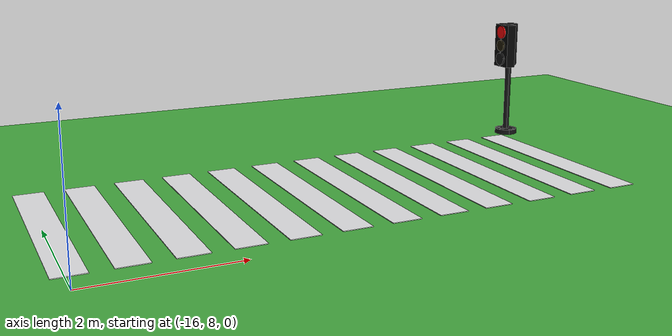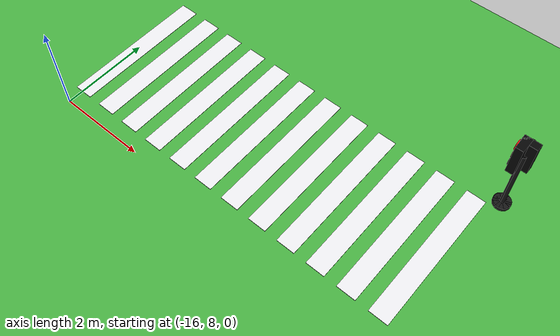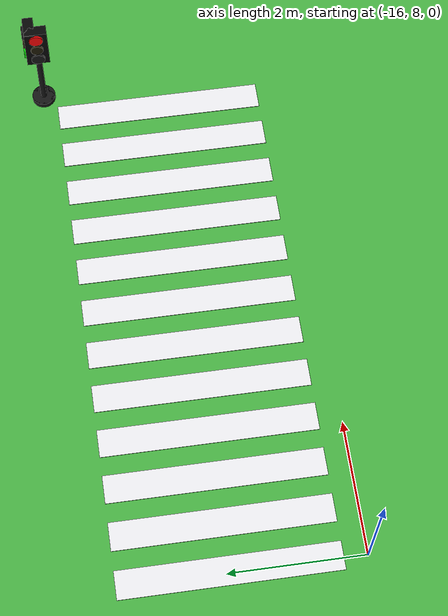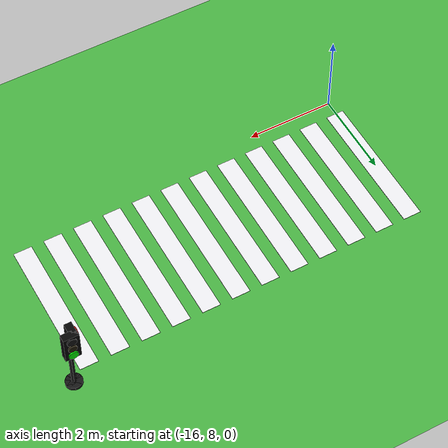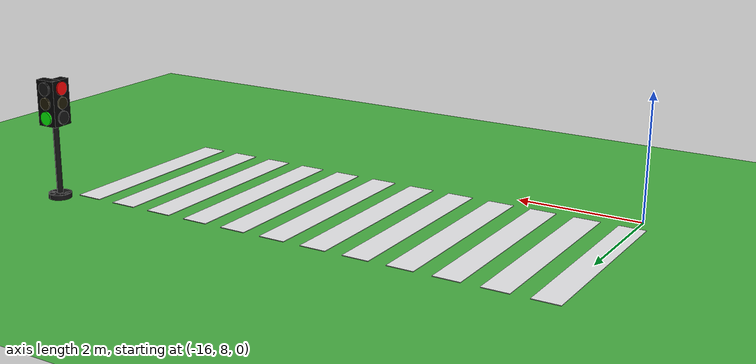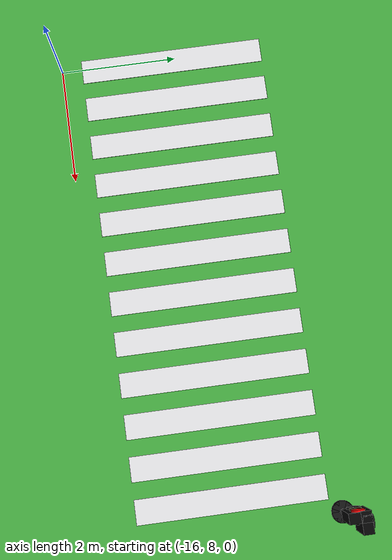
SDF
<sdf version="1.10">
 <world name="city_second">
  <model name="ground_plane">
   <static>true</static>
   <link name="link">
    <collision name="collision">
     <geometry><plane><normal>0 0 1</normal><size>300 300</size></plane></geometry>
    </collision>
    <visual name="visual">
     <geometry><plane><normal>0 0 1</normal><size>300 300</size></plane></geometry>
     <material>
      <ambient>0.280000001 0.689999998 0.25999999 1</ambient>
      <diffuse>0.280000001 0.689999998 0.25999999 1</diffuse>
      <specular>0.0299999993 0.0299999993 0.0299999993 1</specular>
     </material>
    </visual>
    <inertial>
     <mass>1</mass>
     <inertia><ixx>1</ixx><ixy>0</ixy><ixz>0</ixz><iyy>1</iyy><iyz>0</iyz><izz>1</izz></inertia>
    </inertial>
   </link>
  </model>
  <model name="crosswalk_h_1_1_south_7_5">
   <static>true</static>
   <pose>-12.1074 9.9455399999999994 0.017000000000000001 0 0 0</pose>
   <link name="stripe_1">
    <collision name="collision">
     <geometry><box><size>0.41999999999999998 3.2000000000000002 0.01</size></box></geometry>
    </collision>
    <visual name="visual">
     <geometry><box><size>0.41999999999999998 3.2000000000000002 0.01</size></box></geometry>
     <material>
      <ambient>0.920000017 0.920000017 0.930000007 1</ambient>
      <diffuse>0.920000017 0.920000017 0.930000007 1</diffuse>
      <specular>0.0299999993 0.0299999993 0.0299999993 1</specular>
     </material>
    </visual>
    <pose>-3.8500000000000001 0 0 0 0 0</pose>
    <inertial>
     <mass>1</mass>
     <inertia><ixx>1</ixx><ixy>0</ixy><ixz>0</ixz><iyy>1</iyy><iyz>0</iyz><izz>1</izz></inertia>
    </inertial>
   </link>
   <link name="stripe_2">
    <collision name="collision">
     <geometry><box><size>0.41999999999999998 3.2000000000000002 0.01</size></box></geometry>
    </collision>
    <visual name="visual">
     <geometry><box><size>0.41999999999999998 3.2000000000000002 0.01</size></box></geometry>
     <material>
      <ambient>0.920000017 0.920000017 0.930000007 1</ambient>
      <diffuse>0.920000017 0.920000017 0.930000007 1</diffuse>
      <specular>0.0299999993 0.0299999993 0.0299999993 1</specular>
     </material>
    </visual>
    <pose>-3.1500000000000004 0 0 0 0 0</pose>
    <inertial>
     <mass>1</mass>
     <inertia><ixx>1</ixx><ixy>0</ixy><ixz>0</ixz><iyy>1</iyy><iyz>0</iyz><izz>1</izz></inertia>
    </inertial>
   </link>
   <link name="stripe_3">
    <collision name="collision">
     <geometry><box><size>0.41999999999999998 3.2000000000000002 0.01</size></box></geometry>
    </collision>
    <visual name="visual">
     <geometry><box><size>0.41999999999999998 3.2000000000000002 0.01</size></box></geometry>
     <material>
      <ambient>0.920000017 0.920000017 0.930000007 1</ambient>
      <diffuse>0.920000017 0.920000017 0.930000007 1</diffuse>
      <specular>0.0299999993 0.0299999993 0.0299999993 1</specular>
     </material>
    </visual>
    <pose>-2.4500000000000011 0 0 0 0 0</pose>
    <inertial>
     <mass>1</mass>
     <inertia><ixx>1</ixx><ixy>0</ixy><ixz>0</ixz><iyy>1</iyy><iyz>0</iyz><izz>1</izz></inertia>
    </inertial>
   </link>
   <link name="stripe_4">
    <collision name="collision">
     <geometry><box><size>0.41999999999999998 3.2000000000000002 0.01</size></box></geometry>
    </collision>
    <visual name="visual">
     <geometry><box><size>0.41999999999999998 3.2000000000000002 0.01</size></box></geometry>
     <material>
      <ambient>0.920000017 0.920000017 0.930000007 1</ambient>
      <diffuse>0.920000017 0.920000017 0.930000007 1</diffuse>
      <specular>0.0299999993 0.0299999993 0.0299999993 1</specular>
     </material>
    </visual>
    <pose>-1.75 0 0 0 0 0</pose>
    <inertial>
     <mass>1</mass>
     <inertia><ixx>1</ixx><ixy>0</ixy><ixz>0</ixz><iyy>1</iyy><iyz>0</iyz><izz>1</izz></inertia>
    </inertial>
   </link>
   <link name="stripe_5">
    <collision name="collision">
     <geometry><box><size>0.41999999999999998 3.2000000000000002 0.01</size></box></geometry>
    </collision>
    <visual name="visual">
     <geometry><box><size>0.41999999999999998 3.2000000000000002 0.01</size></box></geometry>
     <material>
      <ambient>0.920000017 0.920000017 0.930000007 1</ambient>
      <diffuse>0.920000017 0.920000017 0.930000007 1</diffuse>
      <specular>0.0299999993 0.0299999993 0.0299999993 1</specular>
     </material>
    </visual>
    <pose>-1.0500000000000007 0 0 0 0 0</pose>
    <inertial>
     <mass>1</mass>
     <inertia><ixx>1</ixx><ixy>0</ixy><ixz>0</ixz><iyy>1</iyy><iyz>0</iyz><izz>1</izz></inertia>
    </inertial>
   </link>
   <link name="stripe_6">
    <collision name="collision">
     <geometry><box><size>0.41999999999999998 3.2000000000000002 0.01</size></box></geometry>
    </collision>
    <visual name="visual">
     <geometry><box><size>0.41999999999999998 3.2000000000000002 0.01</size></box></geometry>
     <material>
      <ambient>0.920000017 0.920000017 0.930000007 1</ambient>
      <diffuse>0.920000017 0.920000017 0.930000007 1</diffuse>
      <specular>0.0299999993 0.0299999993 0.0299999993 1</specular>
     </material>
    </visual>
    <pose>-0.34999999999999964 0 0 0 0 0</pose>
    <inertial>
     <mass>1</mass>
     <inertia><ixx>1</ixx><ixy>0</ixy><ixz>0</ixz><iyy>1</iyy><iyz>0</iyz><izz>1</izz></inertia>
    </inertial>
   </link>
   <link name="stripe_7">
    <collision name="collision">
     <geometry><box><size>0.41999999999999998 3.2000000000000002 0.01</size></box></geometry>
    </collision>
    <visual name="visual">
     <geometry><box><size>0.41999999999999998 3.2000000000000002 0.01</size></box></geometry>
     <material>
      <ambient>0.920000017 0.920000017 0.930000007 1</ambient>
      <diffuse>0.920000017 0.920000017 0.930000007 1</diffuse>
      <specular>0.0299999993 0.0299999993 0.0299999993 1</specular>
     </material>
    </visual>
    <pose>0.34999999999999964 0 0 0 0 0</pose>
    <inertial>
     <mass>1</mass>
     <inertia><ixx>1</ixx><ixy>0</ixy><ixz>0</ixz><iyy>1</iyy><iyz>0</iyz><izz>1</izz></inertia>
    </inertial>
   </link>
   <link name="stripe_8">
    <collision name="collision">
     <geometry><box><size>0.41999999999999998 3.2000000000000002 0.01</size></box></geometry>
    </collision>
    <visual name="visual">
     <geometry><box><size>0.41999999999999998 3.2000000000000002 0.01</size></box></geometry>
     <material>
      <ambient>0.920000017 0.920000017 0.930000007 1</ambient>
      <diffuse>0.920000017 0.920000017 0.930000007 1</diffuse>
      <specular>0.0299999993 0.0299999993 0.0299999993 1</specular>
     </material>
    </visual>
    <pose>1.0500000000000007 0 0 0 0 0</pose>
    <inertial>
     <mass>1</mass>
     <inertia><ixx>1</ixx><ixy>0</ixy><ixz>0</ixz><iyy>1</iyy><iyz>0</iyz><izz>1</izz></inertia>
    </inertial>
   </link>
   <link name="stripe_9">
    <collision name="collision">
     <geometry><box><size>0.41999999999999998 3.2000000000000002 0.01</size></box></geometry>
    </collision>
    <visual name="visual">
     <geometry><box><size>0.41999999999999998 3.2000000000000002 0.01</size></box></geometry>
     <material>
      <ambient>0.920000017 0.920000017 0.930000007 1</ambient>
      <diffuse>0.920000017 0.920000017 0.930000007 1</diffuse>
      <specular>0.0299999993 0.0299999993 0.0299999993 1</specular>
     </material>
    </visual>
    <pose>1.75 0 0 0 0 0</pose>
    <inertial>
     <mass>1</mass>
     <inertia><ixx>1</ixx><ixy>0</ixy><ixz>0</ixz><iyy>1</iyy><iyz>0</iyz><izz>1</izz></inertia>
    </inertial>
   </link>
   <link name="stripe_10">
    <collision name="collision">
     <geometry><box><size>0.41999999999999998 3.2000000000000002 0.01</size></box></geometry>
    </collision>
    <visual name="visual">
     <geometry><box><size>0.41999999999999998 3.2000000000000002 0.01</size></box></geometry>
     <material>
      <ambient>0.920000017 0.920000017 0.930000007 1</ambient>
      <diffuse>0.920000017 0.920000017 0.930000007 1</diffuse>
      <specular>0.0299999993 0.0299999993 0.0299999993 1</specular>
     </material>
    </visual>
    <pose>2.4500000000000011 0 0 0 0 0</pose>
    <inertial>
     <mass>1</mass>
     <inertia><ixx>1</ixx><ixy>0</ixy><ixz>0</ixz><iyy>1</iyy><iyz>0</iyz><izz>1</izz></inertia>
    </inertial>
   </link>
   <link name="stripe_11">
    <collision name="collision">
     <geometry><box><size>0.41999999999999998 3.2000000000000002 0.01</size></box></geometry>
    </collision>
    <visual name="visual">
     <geometry><box><size>0.41999999999999998 3.2000000000000002 0.01</size></box></geometry>
     <material>
      <ambient>0.920000017 0.920000017 0.930000007 1</ambient>
      <diffuse>0.920000017 0.920000017 0.930000007 1</diffuse>
      <specular>0.0299999993 0.0299999993 0.0299999993 1</specular>
     </material>
    </visual>
    <pose>3.1500000000000004 0 0 0 0 0</pose>
    <inertial>
     <mass>1</mass>
     <inertia><ixx>1</ixx><ixy>0</ixy><ixz>0</ixz><iyy>1</iyy><iyz>0</iyz><izz>1</izz></inertia>
    </inertial>
   </link>
   <link name="stripe_12">
    <collision name="collision">
     <geometry><box><size>0.41999999999999998 3.2000000000000002 0.01</size></box></geometry>
    </collision>
    <visual name="visual">
     <geometry><box><size>0.41999999999999998 3.2000000000000002 0.01</size></box></geometry>
     <material>
      <ambient>0.920000017 0.920000017 0.930000007 1</ambient>
      <diffuse>0.920000017 0.920000017 0.930000007 1</diffuse>
      <specular>0.0299999993 0.0299999993 0.0299999993 1</specular>
     </material>
    </visual>
    <pose>3.8499999999999996 0 0 0 0 0</pose>
    <inertial>
     <mass>1</mass>
     <inertia><ixx>1</ixx><ixy>0</ixy><ixz>0</ixz><iyy>1</iyy><iyz>0</iyz><izz>1</izz></inertia>
    </inertial>
   </link>
  </model>
  <model name="simple_traffic_light_green_north_1_2_1">
   <static>true</static>
   <pose>-7.828921965272885 11.742283597762533 0 0 0 0</pose>
   <link name="base">
    <pose>0 0 0.040000000000000001 0 0 0</pose>
    <collision name="collision">
     <geometry>
      <cylinder><radius>0.17999999999999999</radius><length>0.080000000000000002</length></cylinder>
     </geometry>
    </collision>
    <visual name="visual">
     <geometry>
      <cylinder><radius>0.17999999999999999</radius><length>0.080000000000000002</length></cylinder>
     </geometry>
     <material>
      <ambient>0.0799999982 0.0799999982 0.0799999982 1</ambient>
      <diffuse>0.0799999982 0.0799999982 0.0799999982 1</diffuse>
      <specular>0.150000006 0.150000006 0.150000006 1</specular>
      <emissive>0 0 0 1</emissive>
     </material>
    </visual>
    <inertial>
     <mass>1</mass>
     <inertia><ixx>1</ixx><ixy>0</ixy><ixz>0</ixz><iyy>1</iyy><iyz>0</iyz><izz>1</izz></inertia>
    </inertial>
   </link>
   <link name="pole">
    <pose>0 0 0.80000000000000004 0 0 0</pose>
    <collision name="collision">
     <geometry>
      <cylinder><radius>0.044999999999999998</radius><length>1.6000000000000001</length></cylinder>
     </geometry>
    </collision>
    <visual name="visual">
     <geometry>
      <cylinder><radius>0.044999999999999998</radius><length>1.6000000000000001</length></cylinder>
     </geometry>
     <material>
      <ambient>0.0799999982 0.0799999982 0.0799999982 1</ambient>
      <diffuse>0.0799999982 0.0799999982 0.0799999982 1</diffuse>
      <specular>0.150000006 0.150000006 0.150000006 1</specular>
      <emissive>0 0 0 1</emissive>
     </material>
    </visual>
    <inertial>
     <mass>1</mass>
     <inertia><ixx>1</ixx><ixy>0</ixy><ixz>0</ixz><iyy>1</iyy><iyz>0</iyz><izz>1</izz></inertia>
    </inertial>
   </link>
   <link name="signal_box">
    <pose>0 0.089999999999999858 1.55 0 0 0</pose>
    <collision name="collision">
     <geometry><box><size>0.34000000000000002 0.16 0.71999999999999997</size></box></geometry>
    </collision>
    <visual name="visual">
     <geometry><box><size>0.34000000000000002 0.16 0.71999999999999997</size></box></geometry>
     <material>
      <ambient>0.0199999996 0.0199999996 0.0199999996 1</ambient>
      <diffuse>0.0199999996 0.0199999996 0.0199999996 1</diffuse>
      <specular>0.150000006 0.150000006 0.150000006 1</specular>
      <emissive>0 0 0 1</emissive>
     </material>
    </visual>
    <inertial>
     <mass>1</mass>
     <inertia><ixx>1</ixx><ixy>0</ixy><ixz>0</ixz><iyy>1</iyy><iyz>0</iyz><izz>1</izz></inertia>
    </inertial>
   </link>
   <link name="red_lens">
    <pose>0 0.18099999999999916 1.78 1.5707963268000003 0 0</pose>
    <collision name="collision">
     <geometry><cylinder><radius>0.105</radius><length>0.035000000000000003</length></cylinder></geometry>
    </collision>
    <visual name="visual">
     <geometry><cylinder><radius>0.105</radius><length>0.035000000000000003</length></cylinder></geometry>
     <material>
      <ambient>0.0799999982 0.0799999982 0.0799999982 1</ambient>
      <diffuse>0.0799999982 0.0799999982 0.0799999982 1</diffuse>
      <specular>0.150000006 0.150000006 0.150000006 1</specular>
      <emissive>0 0 0 1</emissive>
     </material>
    </visual>
    <inertial>
     <mass>1</mass>
     <inertia><ixx>1</ixx><ixy>0</ixy><ixz>0</ixz><iyy>1</iyy><iyz>0</iyz><izz>1</izz></inertia>
    </inertial>
   </link>
   <link name="yellow_lens">
    <pose>0 0.18200000000000038 1.55 1.5707963268000003 0 0</pose>
    <collision name="collision">
     <geometry>
      <cylinder><radius>0.095000000000000001</radius><length>0.035000000000000003</length></cylinder>
     </geometry>
    </collision>
    <visual name="visual">
     <geometry>
      <cylinder><radius>0.095000000000000001</radius><length>0.035000000000000003</length></cylinder>
     </geometry>
     <material>
      <ambient>0.119999997 0.100000001 0.0199999996 1</ambient>
      <diffuse>0.119999997 0.100000001 0.0199999996 1</diffuse>
      <specular>0.150000006 0.150000006 0.150000006 1</specular>
      <emissive>0 0 0 1</emissive>
     </material>
    </visual>
    <inertial>
     <mass>1</mass>
     <inertia><ixx>1</ixx><ixy>0</ixy><ixz>0</ixz><iyy>1</iyy><iyz>0</iyz><izz>1</izz></inertia>
    </inertial>
   </link>
   <link name="green_lens">
    <pose>0 0.18299999999999983 1.3200000000000001 1.5707963268000003 0 0</pose>
    <collision name="collision">
     <geometry><cylinder><radius>0.105</radius><length>0.035000000000000003</length></cylinder></geometry>
    </collision>
    <visual name="visual">
     <geometry><cylinder><radius>0.105</radius><length>0.035000000000000003</length></cylinder></geometry>
     <material>
      <ambient>0.0199999996 1 0.0199999996 1</ambient>
      <diffuse>0.0199999996 1 0.0199999996 1</diffuse>
      <specular>0.150000006 0.150000006 0.150000006 1</specular>
      <emissive>0.0199999996 1 0.0199999996 1</emissive>
     </material>
    </visual>
    <inertial>
     <mass>1</mass>
     <inertia><ixx>1</ixx><ixy>0</ixy><ixz>0</ixz><iyy>1</iyy><iyz>0</iyz><izz>1</izz></inertia>
    </inertial>
   </link>
  </model>
  <model name="simple_traffic_light_red_west_2_2">
   <static>true</static>
   <pose>-7.8200928472660758 11.73966045355432 -2.0816681711721685e-17 0 0 1.5707999672671711</pose>
   <link name="base">
    <pose>0 0 0.040000000000000001 0 0 0</pose>
    <collision name="collision">
     <geometry>
      <cylinder><radius>0.17999999999999999</radius><length>0.080000000000000002</length></cylinder>
     </geometry>
    </collision>
    <visual name="visual">
     <geometry>
      <cylinder><radius>0.17999999999999999</radius><length>0.080000000000000002</length></cylinder>
     </geometry>
     <material>
      <ambient>0.0799999982 0.0799999982 0.0799999982 1</ambient>
      <diffuse>0.0799999982 0.0799999982 0.0799999982 1</diffuse>
      <specular>0.150000006 0.150000006 0.150000006 1</specular>
      <emissive>0 0 0 1</emissive>
     </material>
    </visual>
    <inertial>
     <mass>1</mass>
     <inertia><ixx>1</ixx><ixy>0</ixy><ixz>0</ixz><iyy>1</iyy><iyz>0</iyz><izz>1</izz></inertia>
    </inertial>
   </link>
   <link name="pole">
    <pose>3.5527136788005009e-15 -4.4408920985006262e-15 0.80000000000000004 0 0 3.3306690738754696e-16</pose>
    <collision name="collision">
     <geometry>
      <cylinder><radius>0.044999999999999998</radius><length>1.6000000000000001</length></cylinder>
     </geometry>
    </collision>
    <visual name="visual">
     <geometry>
      <cylinder><radius>0.044999999999999998</radius><length>1.6000000000000001</length></cylinder>
     </geometry>
     <material>
      <ambient>0.0799999982 0.0799999982 0.0799999982 1</ambient>
      <diffuse>0.0799999982 0.0799999982 0.0799999982 1</diffuse>
      <specular>0.150000006 0.150000006 0.150000006 1</specular>
      <emissive>0 0 0 1</emissive>
     </material>
    </visual>
    <inertial>
     <mass>1</mass>
     <inertia><ixx>1</ixx><ixy>0</ixy><ixz>0</ixz><iyy>1</iyy><iyz>0</iyz><izz>1</izz></inertia>
    </inertial>
   </link>
   <link name="signal_box">
    <pose>-3.5527136788005009e-15 0.089999999999999858 1.5500000000000003 0 0 3.3306690738754696e-16</pose>
    <collision name="collision">
     <geometry><box><size>0.34000000000000002 0.16 0.71999999999999997</size></box></geometry>
    </collision>
    <visual name="visual">
     <geometry><box><size>0.34000000000000002 0.16 0.71999999999999997</size></box></geometry>
     <material>
      <ambient>0.0199999996 0.0199999996 0.0199999996 1</ambient>
      <diffuse>0.0199999996 0.0199999996 0.0199999996 1</diffuse>
      <specular>0.150000006 0.150000006 0.150000006 1</specular>
      <emissive>0 0 0 1</emissive>
     </material>
    </visual>
    <inertial>
     <mass>1</mass>
     <inertia><ixx>1</ixx><ixy>0</ixy><ixz>0</ixz><iyy>1</iyy><iyz>0</iyz><izz>1</izz></inertia>
    </inertial>
   </link>
   <link name="red_lens">
    <pose>3.5527136788005009e-15 0.18100000000000094 1.78 1.5707963267999998 -7.8504622930783579e-17 -1.3345785898814093e-15</pose>
    <collision name="collision">
     <geometry><cylinder><radius>0.105</radius><length>0.035000000000000003</length></cylinder></geometry>
    </collision>
    <visual name="visual">
     <geometry><cylinder><radius>0.105</radius><length>0.035000000000000003</length></cylinder></geometry>
     <material>
      <ambient>1 0.0199999996 0.0199999996 1</ambient>
      <diffuse>1 0.0199999996 0.0199999996 1</diffuse>
      <specular>0.150000006 0.150000006 0.150000006 1</specular>
      <emissive>1 0.0199999996 0.0199999996 1</emissive>
     </material>
    </visual>
    <inertial>
     <mass>1</mass>
     <inertia><ixx>1</ixx><ixy>0</ixy><ixz>0</ixz><iyy>1</iyy><iyz>0</iyz><izz>1</izz></inertia>
    </inertial>
   </link>
   <link name="yellow_lens">
    <pose>-3.5527136788005009e-15 0.18199999999999861 1.5500000000000003 1.5707963267999998 -7.8504622930783579e-17 -1.3345785898814093e-15</pose>
    <collision name="collision">
     <geometry>
      <cylinder><radius>0.095000000000000001</radius><length>0.035000000000000003</length></cylinder>
     </geometry>
    </collision>
    <visual name="visual">
     <geometry>
      <cylinder><radius>0.095000000000000001</radius><length>0.035000000000000003</length></cylinder>
     </geometry>
     <material>
      <ambient>0.119999997 0.100000001 0.0199999996 1</ambient>
      <diffuse>0.119999997 0.100000001 0.0199999996 1</diffuse>
      <specular>0.150000006 0.150000006 0.150000006 1</specular>
      <emissive>0 0 0 1</emissive>
     </material>
    </visual>
    <inertial>
     <mass>1</mass>
     <inertia><ixx>1</ixx><ixy>0</ixy><ixz>0</ixz><iyy>1</iyy><iyz>0</iyz><izz>1</izz></inertia>
    </inertial>
   </link>
   <link name="green_lens">
    <pose>3.5527136788005009e-15 0.18300000000000338 1.3199999999999998 1.5707963267999998 -7.8504622930783579e-17 -1.3345785898814093e-15</pose>
    <collision name="collision">
     <geometry><cylinder><radius>0.105</radius><length>0.035000000000000003</length></cylinder></geometry>
    </collision>
    <visual name="visual">
     <geometry><cylinder><radius>0.105</radius><length>0.035000000000000003</length></cylinder></geometry>
     <material>
      <ambient>0.0799999982 0.0799999982 0.0799999982 1</ambient>
      <diffuse>0.0799999982 0.0799999982 0.0799999982 1</diffuse>
      <specular>0.150000006 0.150000006 0.150000006 1</specular>
      <emissive>0 0 0 1</emissive>
     </material>
    </visual>
    <inertial>
     <mass>1</mass>
     <inertia><ixx>1</ixx><ixy>0</ixy><ixz>0</ixz><iyy>1</iyy><iyz>0</iyz><izz>1</izz></inertia>
    </inertial>
   </link>
  </model>
 </world>
</sdf>
